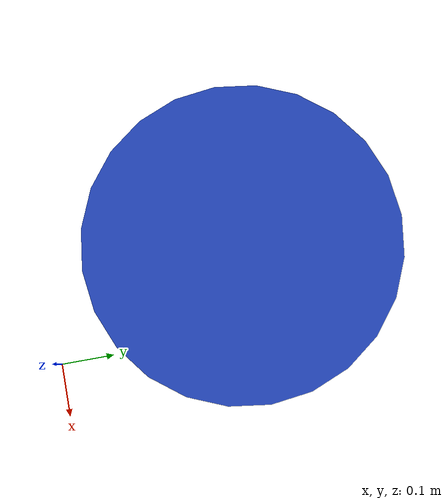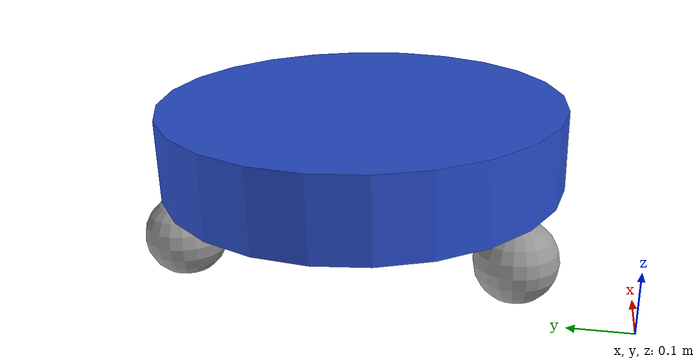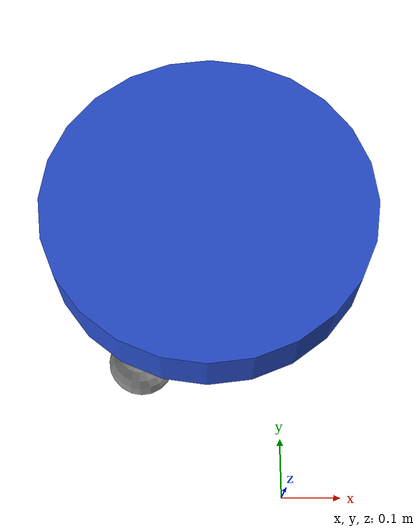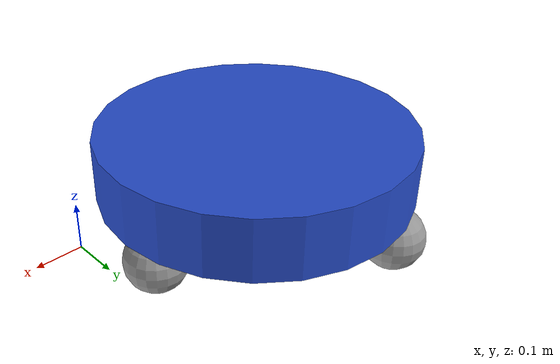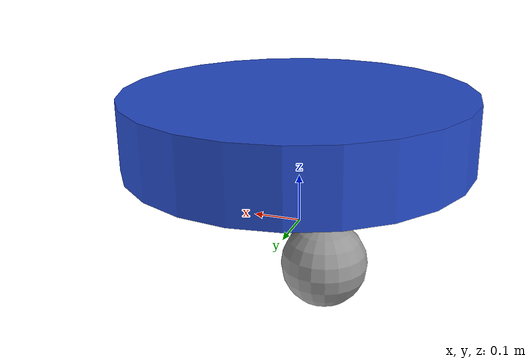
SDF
<?xml version='1.0'?>
<sdf version='1.7'>
  <model name='omni'>
    <link name='link_0'>
      <inertial>
        <mass>1</mass>
        <inertia>
          <ixx>0.145833</ixx>
          <ixy>0</ixy>
          <ixz>0</ixz>
          <iyy>0.145833</iyy>
          <iyz>0</iyz>
          <izz>0.125</izz>
        </inertia>
        <pose>0 0 0 0 -0 0</pose>
      </inertial>
      <pose>-0.125571 0.366775 0.319359 -5e-06 -1e-06 -3.5e-05</pose>
      <gravity>1</gravity>
      <self_collide>0</self_collide>
      <kinematic>0</kinematic>
      <enable_wind>0</enable_wind>
      <visual name='visual'>
        <pose>0 0 0 0 -0 0</pose>
        <geometry>
          <cylinder>
            <radius>0.25</radius>
            <length>0.1</length>
          </cylinder>
        </geometry>
        <material>
          <lighting>1</lighting>
          <script>
            <uri>file://media/materials/scripts/gazebo.material</uri>
            <name>Gazebo/Blue</name>
          </script>
          <shader type='vertex'>
            <normal_map>__default__</normal_map>
          </shader>
          <ambient>0.3 0.3 0.3 1</ambient>
          <diffuse>0.7 0.7 0.7 1</diffuse>
          <specular>0.01 0.01 0.01 1</specular>
          <emissive>0 0 0 1</emissive>
        </material>
        <transparency>0</transparency>
        <cast_shadows>1</cast_shadows>
      </visual>
      <collision name='collision'>
        <laser_retro>0</laser_retro>
        <max_contacts>10</max_contacts>
        <pose>0 0 0 0 -0 0</pose>
        <geometry>
          <cylinder>
            <radius>0.25</radius>
            <length>0.1</length>
          </cylinder>
        </geometry>
        <surface>
          <friction>
            <ode>
              <mu>1</mu>
              <mu2>1</mu2>
              <fdir1>0 0 0</fdir1>
              <slip1>0</slip1>
              <slip2>0</slip2>
            </ode>
            <torsional>
              <coefficient>1</coefficient>
              <patch_radius>0</patch_radius>
              <surface_radius>0</surface_radius>
              <use_patch_radius>1</use_patch_radius>
              <ode>
                <slip>0</slip>
              </ode>
            </torsional>
          </friction>
          <bounce>
            <restitution_coefficient>0</restitution_coefficient>
            <threshold>1e+06</threshold>
          </bounce>
          <contact>
            <collide_without_contact>0</collide_without_contact>
            <collide_without_contact_bitmask>1</collide_without_contact_bitmask>
            <collide_bitmask>1</collide_bitmask>
            <ode>
              <soft_cfm>0</soft_cfm>
              <soft_erp>0.2</soft_erp>
              <kp>1e+13</kp>
              <kd>1</kd>
              <max_vel>0.01</max_vel>
              <min_depth>0</min_depth>
            </ode>
            <bullet>
              <split_impulse>1</split_impulse>
              <split_impulse_penetration_threshold>-0.01</split_impulse_penetration_threshold>
              <soft_cfm>0</soft_cfm>
              <soft_erp>0.2</soft_erp>
              <kp>1e+13</kp>
              <kd>1</kd>
            </bullet>
          </contact>
        </surface>
      </collision>
    </link>
    <link name='link_1'>
      <inertial>
        <mass>0.2</mass>
        <inertia>
          <ixx>0.02</ixx>
          <ixy>0</ixy>
          <ixz>0</ixz>
          <iyy>0.02</iyy>
          <iyz>0</iyz>
          <izz>0.02</izz>
        </inertia>
        <pose>0 0 0 0 -0 0</pose>
      </inertial>
      <pose>-0.225578 0.166778 0.21936 0 -0 0</pose>
      <gravity>1</gravity>
      <self_collide>0</self_collide>
      <kinematic>0</kinematic>
      <enable_wind>0</enable_wind>
      <visual name='visual'>
        <pose>0 0 0 0 -0 0</pose>
        <geometry>
          <sphere>
            <radius>0.05</radius>
          </sphere>
        </geometry>
        <material>
          <lighting>1</lighting>
          <script>
            <uri>file://media/materials/scripts/gazebo.material</uri>
            <name>Gazebo/Grey</name>
          </script>
          <shader type='pixel'>
            <normal_map>__default__</normal_map>
          </shader>
          <ambient>0.3 0.3 0.3 1</ambient>
          <diffuse>0.7 0.7 0.7 1</diffuse>
          <specular>0.01 0.01 0.01 1</specular>
          <emissive>0 0 0 1</emissive>
        </material>
        <transparency>0</transparency>
        <cast_shadows>1</cast_shadows>
      </visual>
      <collision name='collision'>
        <laser_retro>0</laser_retro>
        <max_contacts>10</max_contacts>
        <pose>0 0 0 0 -0 0</pose>
        <geometry>
          <sphere>
            <radius>0.05</radius>
          </sphere>
        </geometry>
        <surface>
          <friction>
            <ode>
              <mu>1</mu>
              <mu2>1</mu2>
              <fdir1>0 0 0</fdir1>
              <slip1>0</slip1>
              <slip2>0</slip2>
            </ode>
            <torsional>
              <coefficient>1</coefficient>
              <patch_radius>0</patch_radius>
              <surface_radius>0</surface_radius>
              <use_patch_radius>1</use_patch_radius>
              <ode>
                <slip>0</slip>
              </ode>
            </torsional>
          </friction>
          <bounce>
            <restitution_coefficient>0</restitution_coefficient>
            <threshold>1e+06</threshold>
          </bounce>
          <contact>
            <collide_without_contact>0</collide_without_contact>
            <collide_without_contact_bitmask>1</collide_without_contact_bitmask>
            <collide_bitmask>1</collide_bitmask>
            <ode>
              <soft_cfm>0</soft_cfm>
              <soft_erp>0.2</soft_erp>
              <kp>1e+13</kp>
              <kd>1</kd>
              <max_vel>0.01</max_vel>
              <min_depth>0</min_depth>
            </ode>
            <bullet>
              <split_impulse>1</split_impulse>
              <split_impulse_penetration_threshold>-0.01</split_impulse_penetration_threshold>
              <soft_cfm>0</soft_cfm>
              <soft_erp>0.2</soft_erp>
              <kp>1e+13</kp>
              <kd>1</kd>
            </bullet>
          </contact>
        </surface>
      </collision>
    </link>
    <link name='link_1_clone'>
      <inertial>
        <mass>0.2</mass>
        <inertia>
          <ixx>0.02</ixx>
          <ixy>0</ixy>
          <ixz>0</ixz>
          <iyy>0.02</iyy>
          <iyz>0</iyz>
          <izz>0.02</izz>
        </inertia>
        <pose>0 0 0 0 -0 0</pose>
      </inertial>
      <pose>0.074429 0.366767 0.219359 0 -0 0</pose>
      <gravity>1</gravity>
      <self_collide>0</self_collide>
      <kinematic>0</kinematic>
      <enable_wind>0</enable_wind>
      <visual name='visual'>
        <pose>0 0 0 0 -0 0</pose>
        <geometry>
          <sphere>
            <radius>0.05</radius>
          </sphere>
        </geometry>
        <material>
          <lighting>1</lighting>
          <script>
            <uri>file://media/materials/scripts/gazebo.material</uri>
            <name>Gazebo/Grey</name>
          </script>
          <shader type='pixel'>
            <normal_map>__default__</normal_map>
          </shader>
          <ambient>0.3 0.3 0.3 1</ambient>
          <diffuse>0.7 0.7 0.7 1</diffuse>
          <specular>0.01 0.01 0.01 1</specular>
          <emissive>0 0 0 1</emissive>
        </material>
        <transparency>0</transparency>
        <cast_shadows>1</cast_shadows>
      </visual>
      <collision name='collision'>
        <laser_retro>0</laser_retro>
        <max_contacts>10</max_contacts>
        <pose>0 0 0 0 -0 0</pose>
        <geometry>
          <sphere>
            <radius>0.05</radius>
          </sphere>
        </geometry>
        <surface>
          <friction>
            <ode>
              <mu>1</mu>
              <mu2>1</mu2>
              <fdir1>0 0 0</fdir1>
              <slip1>0</slip1>
              <slip2>0</slip2>
            </ode>
            <torsional>
              <coefficient>1</coefficient>
              <patch_radius>0</patch_radius>
              <surface_radius>0</surface_radius>
              <use_patch_radius>1</use_patch_radius>
              <ode>
                <slip>0</slip>
              </ode>
            </torsional>
          </friction>
          <bounce>
            <restitution_coefficient>0</restitution_coefficient>
            <threshold>1e+06</threshold>
          </bounce>
          <contact>
            <collide_without_contact>0</collide_without_contact>
            <collide_without_contact_bitmask>1</collide_without_contact_bitmask>
            <collide_bitmask>1</collide_bitmask>
            <ode>
              <soft_cfm>0</soft_cfm>
              <soft_erp>0.2</soft_erp>
              <kp>1e+13</kp>
              <kd>1</kd>
              <max_vel>0.01</max_vel>
              <min_depth>0</min_depth>
            </ode>
            <bullet>
              <split_impulse>1</split_impulse>
              <split_impulse_penetration_threshold>-0.01</split_impulse_penetration_threshold>
              <soft_cfm>0</soft_cfm>
              <soft_erp>0.2</soft_erp>
              <kp>1e+13</kp>
              <kd>1</kd>
            </bullet>
          </contact>
        </surface>
      </collision>
    </link>
    <link name='link_1_clone_0'>
      <inertial>
        <mass>0.2</mass>
        <inertia>
          <ixx>0.02</ixx>
          <ixy>0</ixy>
          <ixz>0</ixz>
          <iyy>0.02</iyy>
          <iyz>0</iyz>
          <izz>0.02</izz>
        </inertia>
        <pose>0 0 0 0 -0 0</pose>
      </inertial>
      <pose>-0.225564 0.566778 0.219358 0 -0 0</pose>
      <gravity>1</gravity>
      <self_collide>0</self_collide>
      <kinematic>0</kinematic>
      <enable_wind>0</enable_wind>
      <visual name='visual'>
        <pose>0 0 0 0 -0 0</pose>
        <geometry>
          <sphere>
            <radius>0.05</radius>
          </sphere>
        </geometry>
        <material>
          <lighting>1</lighting>
          <script>
            <uri>file://media/materials/scripts/gazebo.material</uri>
            <name>Gazebo/Grey</name>
          </script>
          <shader type='pixel'>
            <normal_map>__default__</normal_map>
          </shader>
          <ambient>0.3 0.3 0.3 1</ambient>
          <diffuse>0.7 0.7 0.7 1</diffuse>
          <specular>0.01 0.01 0.01 1</specular>
          <emissive>0 0 0 1</emissive>
        </material>
        <transparency>0</transparency>
        <cast_shadows>1</cast_shadows>
      </visual>
      <collision name='collision'>
        <laser_retro>0</laser_retro>
        <max_contacts>10</max_contacts>
        <pose>0 0 0 0 -0 0</pose>
        <geometry>
          <sphere>
            <radius>0.05</radius>
          </sphere>
        </geometry>
        <surface>
          <friction>
            <ode>
              <mu>1</mu>
              <mu2>1</mu2>
              <fdir1>0 0 0</fdir1>
              <slip1>0</slip1>
              <slip2>0</slip2>
            </ode>
            <torsional>
              <coefficient>1</coefficient>
              <patch_radius>0</patch_radius>
              <surface_radius>0</surface_radius>
              <use_patch_radius>1</use_patch_radius>
              <ode>
                <slip>0</slip>
              </ode>
            </torsional>
          </friction>
          <bounce>
            <restitution_coefficient>0</restitution_coefficient>
            <threshold>1e+06</threshold>
          </bounce>
          <contact>
            <collide_without_contact>0</collide_without_contact>
            <collide_without_contact_bitmask>1</collide_without_contact_bitmask>
            <collide_bitmask>1</collide_bitmask>
            <ode>
              <soft_cfm>0</soft_cfm>
              <soft_erp>0.2</soft_erp>
              <kp>1e+13</kp>
              <kd>1</kd>
              <max_vel>0.01</max_vel>
              <min_depth>0</min_depth>
            </ode>
            <bullet>
              <split_impulse>1</split_impulse>
              <split_impulse_penetration_threshold>-0.01</split_impulse_penetration_threshold>
              <soft_cfm>0</soft_cfm>
              <soft_erp>0.2</soft_erp>
              <kp>1e+13</kp>
              <kd>1</kd>
            </bullet>
          </contact>
        </surface>
      </collision>
    </link>
    <joint name='link_0_JOINT_0' type='ball'>
      <parent>link_0</parent>
      <child>link_1</child>
      <pose>0 0 0 0 -0 0</pose>
      <physics>
        <ode>
          <limit>
            <cfm>0</cfm>
            <erp>0.2</erp>
          </limit>
          <suspension>
            <cfm>0</cfm>
            <erp>0.2</erp>
          </suspension>
        </ode>
      </physics>
    </joint>
    <joint name='link_0_JOINT_1' type='ball'>
      <parent>link_0</parent>
      <child>link_1_clone</child>
      <pose>0 0 0 0 -0 0</pose>
      <physics>
        <ode>
          <limit>
            <cfm>0</cfm>
            <erp>0.2</erp>
          </limit>
          <suspension>
            <cfm>0</cfm>
            <erp>0.2</erp>
          </suspension>
        </ode>
      </physics>
    </joint>
    <joint name='link_0_JOINT_2' type='ball'>
      <parent>link_0</parent>
      <child>link_1_clone_0</child>
      <pose>0 0 0 0 -0 0</pose>
      <physics>
        <ode>
          <limit>
            <cfm>0</cfm>
            <erp>0.2</erp>
          </limit>
          <suspension>
            <cfm>0</cfm>
            <erp>0.2</erp>
          </suspension>
        </ode>
      </physics>
    </joint>
    <static>0</static>
    <allow_auto_disable>1</allow_auto_disable>
  </model>
</sdf>
